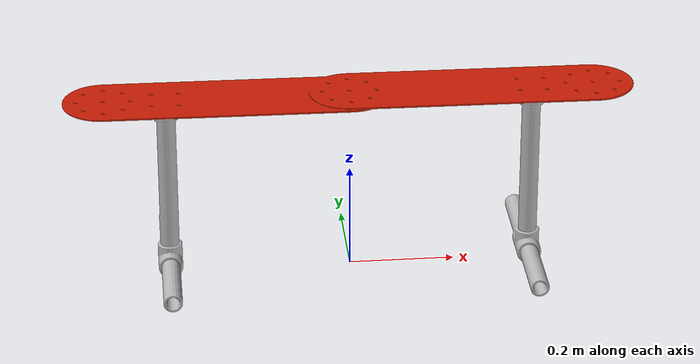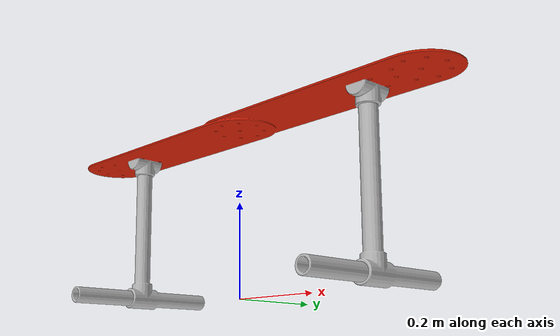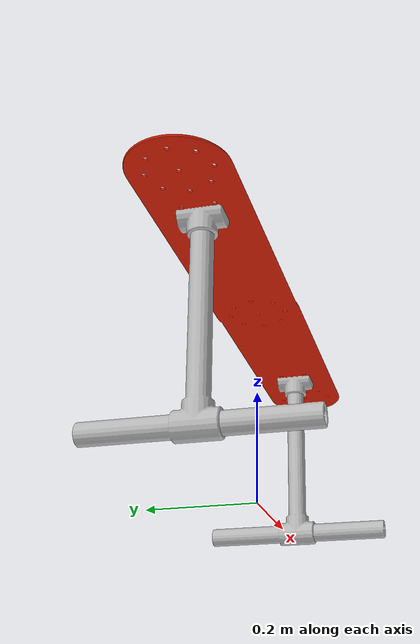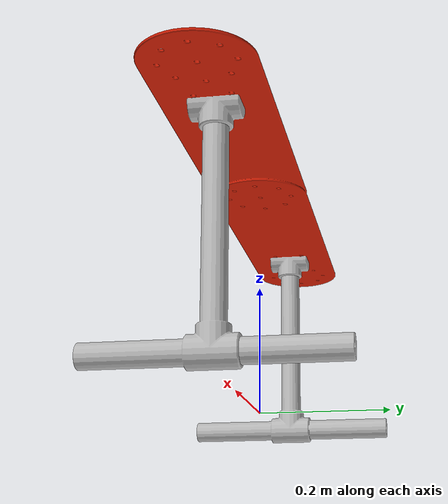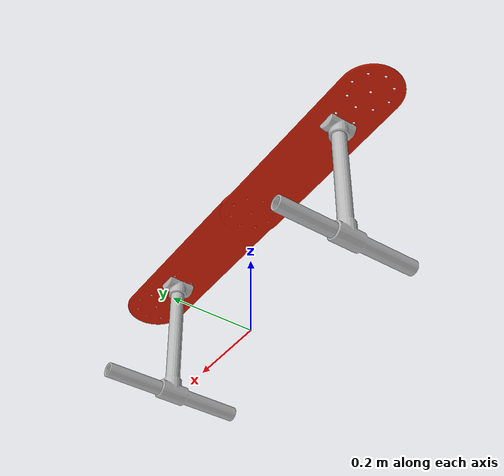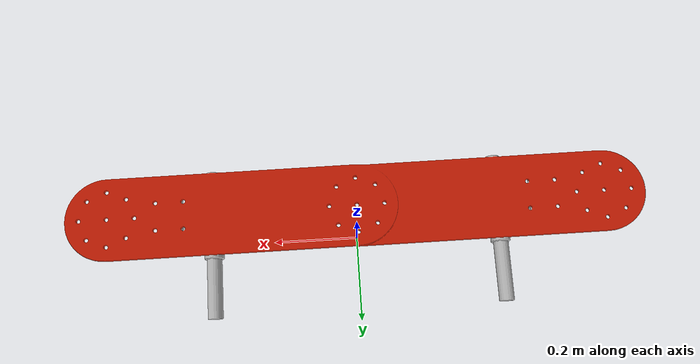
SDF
<?xml version="1.0"?>
<sdf version="1.6">
	<model name="robosub_path">
		<static>true</static>
    	<pose>0 0 0 0 0 0</pose>
		<link name="robosub_path">
			<pose>0 0 0 0 0 0</pose>
			<collision name="robosub_path_col">
				<pose>0 0 0 0 0 0</pose>
				<geometry>
					<mesh>
						<uri>model://robosub_path/meshes/path.dae</uri>
					</mesh>
				</geometry>
			</collision>
			<visual name="robosub_path_vis">
				<pose>0 0 0 0 0 0</pose>
				<geometry>
					<mesh>
						<uri>model://robosub_path/meshes/path.dae</uri>
					</mesh>
				</geometry>
			</visual>

		</link>
	</model>
</sdf>
